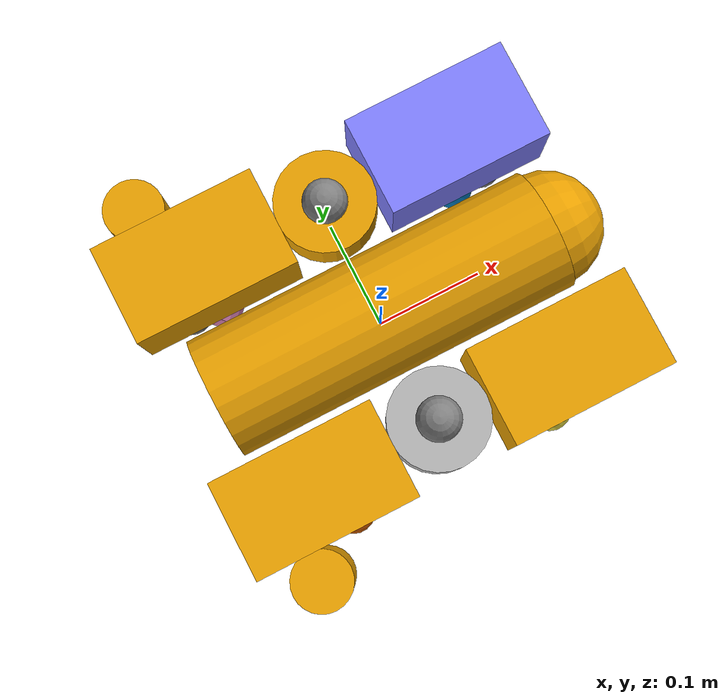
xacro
<?xml version="1.0"?>

<!--
  Coordinates are: x forward, y left, z up; rotation is: roll right, pitch forward, yaw left.
  See http://www.ros.org/reps/rep-0103.html for details.
-->

<robot name="orca" xmlns:xacro="http://ros.org/wiki/xacro">

  <!-- Orca constants -->
  <xacro:property name="TOTAL_MASS" value="10"/>
  <xacro:property name="TOTAL_VOLUME" value="0.01"/>
  <xacro:property name="LENGTH" value="0.457"/>
  <xacro:property name="WIDTH" value="0.338"/>
  <xacro:property name="HEIGHT" value="0.254"/>
  <xacro:property name="IXX" value="${TOTAL_MASS / 12 * (WIDTH * WIDTH + HEIGHT * HEIGHT)}"/>
  <xacro:property name="IYY" value="${TOTAL_MASS / 12 * (LENGTH * LENGTH + HEIGHT * HEIGHT)}"/>
  <xacro:property name="IZZ" value="${TOTAL_MASS / 12 * (LENGTH * LENGTH + WIDTH * WIDTH)}"/>
  <xacro:property name="FLOAT_X" value="0.12"/>
  <xacro:property name="FLOAT_Y" value="0.11"/>
  <xacro:property name="FLOAT_Z" value="0.07"/>
  <xacro:property name="THRUSTER_X" value="0.15"/>
  <xacro:property name="THRUSTER_Y" value="0.09"/>
  <xacro:property name="THRUSTER_Z" value="-0.009"/>
  <xacro:property name="VERT_THRUSTER_Y" value="0.105"/>
  <xacro:property name="VERT_THRUSTER_Z" value="0.09"/>
  <xacro:property name="MASS_Z" value="0.011"/>
  <xacro:property name="FORWARD_FORCE" value="50"/>
  <xacro:property name="REVERSE_FORCE" value="40"/>
  <xacro:property name="HAS_TETHER" default="false"/>
  <xacro:property name="SURFACE" default="0"/>

  <!-- Physics properties -->
  <xacro:property name="FLUID_DENSITY" value="1029"/>
  <xacro:property name="DISPLACED_MASS" value="${TOTAL_VOLUME*FLUID_DENSITY}"/>

  <!-- General constants -->
  <xacro:property name="PI" value="3.1415926535897931"/>

  <!-- Materials -->
  <material name="gray"><color rgba="0.5 0.5 0.5 1.0"/></material>
  <material name="blue"><color rgba="0.5 0.5 1.0 1.0"/></material>
  <material name="red"><color rgba="1.0 0.0 0.0 1.0"/></material>

  <!-- Thruster origins -->
  <xacro:property name="front_right_origin">
    <origin xyz="${THRUSTER_X} ${-THRUSTER_Y} ${THRUSTER_Z}" rpy="0 ${PI/2} ${PI/4}"/>
  </xacro:property>
  <xacro:property name="front_left_origin">
    <origin xyz="${THRUSTER_X} ${THRUSTER_Y} ${THRUSTER_Z}" rpy="0 ${PI/2} ${-PI/4}"/>
  </xacro:property>
  <xacro:property name="rear_right_origin">
    <origin xyz="${-THRUSTER_X} ${-THRUSTER_Y} ${THRUSTER_Z}" rpy="0 ${PI/2} ${PI*3/4}"/>
  </xacro:property>
  <xacro:property name="rear_left_origin">
    <origin xyz="${-THRUSTER_X} ${THRUSTER_Y} ${THRUSTER_Z}" rpy="0 ${PI/2} ${-PI*3/4}"/>
  </xacro:property>
  <xacro:property name="vertical_right_origin">
    <origin xyz="0 ${-VERT_THRUSTER_Y} ${VERT_THRUSTER_Z}" rpy="0 0 0"/>
  </xacro:property>
  <xacro:property name="vertical_left_origin">
    <origin xyz="0 ${VERT_THRUSTER_Y} ${VERT_THRUSTER_Z}" rpy="0 0 0"/>
  </xacro:property>

  <!-- Thruster macro -->
  <xacro:macro name="t200" params="name *origin">
    <link name="t200_link_${name}">
      <!-- Front cone -->
      <visual>
        <origin xyz="0 0 0"/>
        <geometry><sphere radius="0.02"/></geometry>
        <material name="gray"/> <!-- All visual elements in this link pick up this material -->
      </visual>
      <!-- Rear cone -->
      <visual>
        <origin xyz="0 0 -0.07"/>
        <geometry><sphere radius="0.02"/></geometry>
      </visual>
      <!-- Thruster body -->
      <visual>
        <origin xyz="0 0 -0.035"/>
        <geometry><cylinder length="0.07" radius="0.02"/></geometry>
      </visual>
      <!-- Propeller guard -->
      <visual>
        <origin xyz="0 0 -0.0225"/>
        <geometry><cylinder length="0.045" radius="0.045"/></geometry>
      </visual>
    </link>
    <joint name="t200_joint_${name}" type="fixed">
      <xacro:insert_block name="origin" />
      <parent link="base_link"/>
      <child link="t200_link_${name}"/>
    </joint>
  </xacro:macro>

  <!-- Base link -->
  <link name="base_link">
    <!-- Inertial -->
    <inertial>
      <origin xyz="0 0 ${MASS_Z}"/> <!-- Center of mass -->
      <mass value="${TOTAL_MASS}"/>
      <inertia ixx="${IXX}" ixy="0.0" ixz="0.0" iyy="${IYY}" iyz="0.0" izz="${IZZ}"/>
    </inertial>
    <!-- Float -->
    <visual>
      <origin xyz="${FLOAT_X} ${FLOAT_Y} ${FLOAT_Z}"/>
      <geometry><box size="0.15 0.09 0.08"/></geometry>
      <material name="blue"/>
    </visual>
    <!-- Float -->
    <visual>
      <origin xyz="${FLOAT_X} ${-FLOAT_Y} ${FLOAT_Z}"/>
      <geometry><box size="0.15 0.09 0.08"/></geometry>
    </visual>
    <!-- Float -->
    <visual>
      <origin xyz="${-FLOAT_X} ${FLOAT_Y} ${FLOAT_Z}"/>
      <geometry><box size="0.15 0.09 0.08"/></geometry>
    </visual>
    <!-- Float -->
    <visual>
      <origin xyz="${-FLOAT_X} ${-FLOAT_Y} ${FLOAT_Z}"/>
      <geometry><box size="0.15 0.09 0.08"/></geometry>
    </visual>
    <!-- Electronics tube -->
    <visual>
      <origin xyz="0 0 0.063" rpy="0 ${PI/2} 0"/>
      <geometry><cylinder length="0.32" radius="0.055"/></geometry>
    </visual>
    <!-- Front-facing camera hemisphere -->
    <visual>
      <origin xyz="0.16 0 0.063" rpy="0 ${PI/2} 0"/>
      <geometry><sphere radius="0.052"/></geometry>
    </visual>
    <!-- Battery tube -->
    <visual>
      <origin xyz="0 0 -0.05" rpy="0 ${PI/2} 0"/>
      <geometry><cylinder length="0.25" radius="0.045"/></geometry>
    </visual>
    <!-- Left down-facing camera tube -->
    <visual>
      <origin xyz="-0.15 0.18 0" rpy="0 0 0"/>
      <geometry><cylinder length="0.135" radius="0.0275"/></geometry>
    </visual>
    <!-- Right down-facing camera tube -->
    <visual>
      <origin xyz="-0.15 -0.18 0" rpy="0 0 0"/>
      <geometry><cylinder length="0.135" radius="0.0275"/></geometry>
    </visual>
    <!-- Collision region -->
    <collision>
      <geometry><box size="${LENGTH} ${WIDTH} ${HEIGHT}"/></geometry>
    </collision>
  </link>

  <!-- Left down-facing camera -->
  <link name="left_camera_link">
    <!-- Camera hemisphere -->
    <visual>
      <origin xyz="0 0 0" rpy="0 0 0"/>
      <geometry><sphere radius="0.026"/></geometry>
      <material name="red"/>
    </visual>
  </link>

  <!-- Attach left down-facing camera to base_link -->
  <joint name="left_camera_joint" type="fixed">
    <axis xyz="0 1 0" />
    <origin xyz="-0.15 0.18 -0.0675" rpy="0 1.57079 0"/>
    <parent link="base_link"/>
    <child link="left_camera_link"/>
  </joint>

  <!-- Right down-facing camera -->
  <link name="right_camera_link">
    <!-- Camera hemisphere -->
    <visual>
      <origin xyz="0 0 0" rpy="0 0 0"/>
      <geometry><sphere radius="0.026"/></geometry>
      <material name="red"/>
    </visual>
  </link>

  <!-- Attach right down-facing camera to base_link -->
  <joint name="right_camera_joint" type="fixed">
    <axis xyz="0 1 0" />
    <origin xyz="-0.15 -0.18 -0.0675" rpy="0 1.57079 0"/>
    <parent link="base_link"/>
    <child link="right_camera_link"/>
  </joint>

  <!-- Attach thrusters to the base_link -->
  <xacro:t200 name="front_right">
    <xacro:insert_block name="front_right_origin"/>
  </xacro:t200>
  <xacro:t200 name="front_left">
    <xacro:insert_block name="front_left_origin"/>
  </xacro:t200>
  <xacro:t200 name="rear_right">
    <xacro:insert_block name="rear_right_origin"/>
  </xacro:t200>
  <xacro:t200 name="rear_left">
    <xacro:insert_block name="rear_left_origin"/>
  </xacro:t200>
  <xacro:t200 name="vertical_right">
    <xacro:insert_block name="vertical_right_origin"/>
  </xacro:t200>
  <xacro:t200 name="vertical_left">
    <xacro:insert_block name="vertical_left_origin"/>
  </xacro:t200>

  <!--
    The OrcaBuoyancyPlugin applies a force that counteracts gravity.
    Buoyancy force is not applied if the link is above the surface of the water.
  -->
  <gazebo>
    <plugin name="OrcaBuoyancyPlugin" filename="libOrcaBuoyancyPlugin.so">
      <fluid_density>${FLUID_DENSITY}</fluid_density>
      <link name="base_link">
        <center_of_volume>0 0 0.06</center_of_volume>
        <volume>${TOTAL_VOLUME}</volume>
      </link>
    </plugin>
  </gazebo>

  <!--
  The OrcaDragPlugin applies a drag force proportional to velocity^2.
  -->
  <gazebo>
    <plugin name="OrcaDragPlugin" filename="libOrcaDragPlugin.so">
      <link name="base_link">
        <center_of_mass>0 0 ${MASS_Z}</center_of_mass>
        <tether_attach>-0.25 0 ${THRUSTER_Z}</tether_attach>
        <xacro:unless value="${HAS_TETHER}">
          <tether_drag>0</tether_drag>
        </xacro:unless>
      </link>
    </plugin>
  </gazebo>

  <gazebo>
    <plugin name="OrcaThrusterPlugin" filename="libOrcaThrusterPlugin.so">
      <link_name>orca::base_link</link_name>
      <thruster name="front_right"> <!-- name attributes are ignored; the tag order must match the message array order -->
        <pos_force>${FORWARD_FORCE}</pos_force> <!-- units are N, positive for ccw, negative for cw -->
        <neg_force>${REVERSE_FORCE}</neg_force> <!-- units are N, positive for ccw, negative for cw -->
        <xacro:insert_block name="front_right_origin"/>
      </thruster>
      <thruster name="front_left">
        <pos_force>${FORWARD_FORCE}</pos_force>
        <neg_force>${REVERSE_FORCE}</neg_force>
        <xacro:insert_block name="front_left_origin"/>
      </thruster>
      <thruster name="rear_right">
        <pos_force>${-REVERSE_FORCE}</pos_force>
        <neg_force>${-FORWARD_FORCE}</neg_force>
        <xacro:insert_block name="rear_right_origin"/>
      </thruster>
      <thruster name="rear_left">
        <pos_force>${-REVERSE_FORCE}</pos_force>
        <neg_force>${-FORWARD_FORCE}</neg_force>
        <xacro:insert_block name="rear_left_origin"/>
      </thruster>
      <thruster name="vertical_right">
        <pos_force>${FORWARD_FORCE}</pos_force>
        <neg_force>${REVERSE_FORCE}</neg_force>
        <xacro:insert_block name="vertical_right_origin"/>
      </thruster>
      <thruster name="vertical_left">
        <pos_force>${-REVERSE_FORCE}</pos_force>
        <neg_force>${-FORWARD_FORCE}</neg_force>
        <xacro:insert_block name="vertical_left_origin"/>
      </thruster>
    </plugin>
  </gazebo>

  <!--
    The OrcaBarometerPlugin (wraps a Gazebo altimeter sensor) simulates a barometer sensor such as the BlueRobotics Bar30.
  -->
  <gazebo reference="base_link">
    <sensor name="barometer_sensor" type="altimeter">
      <update_rate>50</update_rate> <!-- Match orca_driver rate -->
      <plugin name="OrcaBarometerPlugin" filename="libOrcaBarometerPlugin.so">
        <fluid_density>${FLUID_DENSITY}</fluid_density>
      </plugin>
    </sensor>
  </gazebo>

  <!--
    The OrcaIMUPlugin (wraps a Gazebo IMU sensor) simulates an IMU sensor such as the Phidgets 1044.
  -->
  <gazebo reference="base_link">
    <gravity>true</gravity>
    <sensor name="imu_sensor" type="imu">
      <update_rate>50</update_rate> <!-- Gazebeo max seems to be 50Hz -->
      <plugin name="OrcaIMUPlugin" filename="libOrcaIMUPlugin.so" />
      <pose>0 0 0 0 0 0</pose>
    </sensor>
  </gazebo>

  <!--
    The OrcaGroundTruthPlugin publishes a ground truth pose.
  -->
  <gazebo>
    <plugin name="OrcaGroundTruthPlugin" filename="libOrcaGroundTruthPlugin.so">
      <link name="base_link" />
      <ros_topic>/ground_truth</ros_topic>
    </plugin>
  </gazebo>

  <!--
    The camera_controller plugin (wraps a Gazebo camera sensor) simulates a camera driver.
    Left down-facing camera driver:
  -->
  <gazebo reference="left_camera_link">
    <sensor type="camera" name="left_camera">
      <update_rate>30.0</update_rate>
      <camera name="head">
        <horizontal_fov>1.92</horizontal_fov>
        <image>
          <width>800</width>
          <height>600</height>
          <format>R8G8B8</format>
        </image>
        <clip>
          <near>0.02</near>
          <far>300</far>
        </clip>
        <noise>
          <type>gaussian</type>
          <!-- Noise is sampled independently per pixel on each frame.
               That pixel's noise value is added to each of its color
               channels, which at that point lie in the range [0,1]. -->
          <mean>0.0</mean>
          <stddev>0.007</stddev>
        </noise>
      </camera>
      <plugin name="camera_controller" filename="libgazebo_ros_camera.so">
        <alwaysOn>true</alwaysOn>
        <updateRate>0.0</updateRate>
        <cameraName>orca/left_camera</cameraName>
        <imageTopicName>image_raw</imageTopicName>
        <cameraInfoTopicName>camera_info</cameraInfoTopicName>
        <frameName>left_camera_link</frameName>
        <hackBaseline>0.07</hackBaseline>
        <distortionK1>0.0</distortionK1>
        <distortionK2>0.0</distortionK2>
        <distortionK3>0.0</distortionK3>
        <distortionT1>0.0</distortionT1>
        <distortionT2>0.0</distortionT2>
      </plugin>
    </sensor>
  </gazebo>

</robot>
